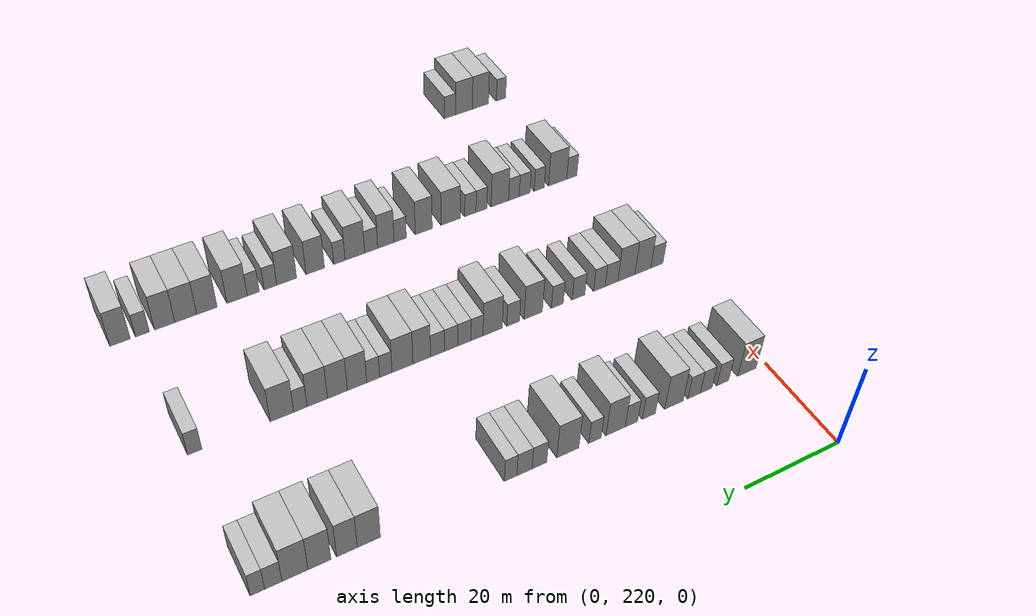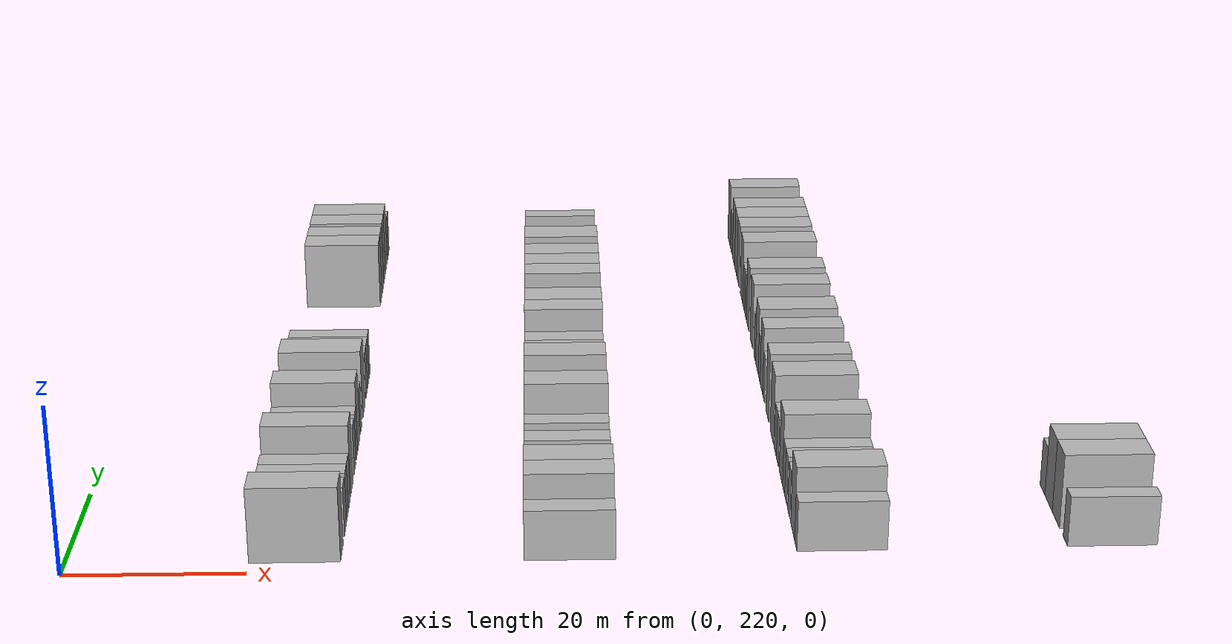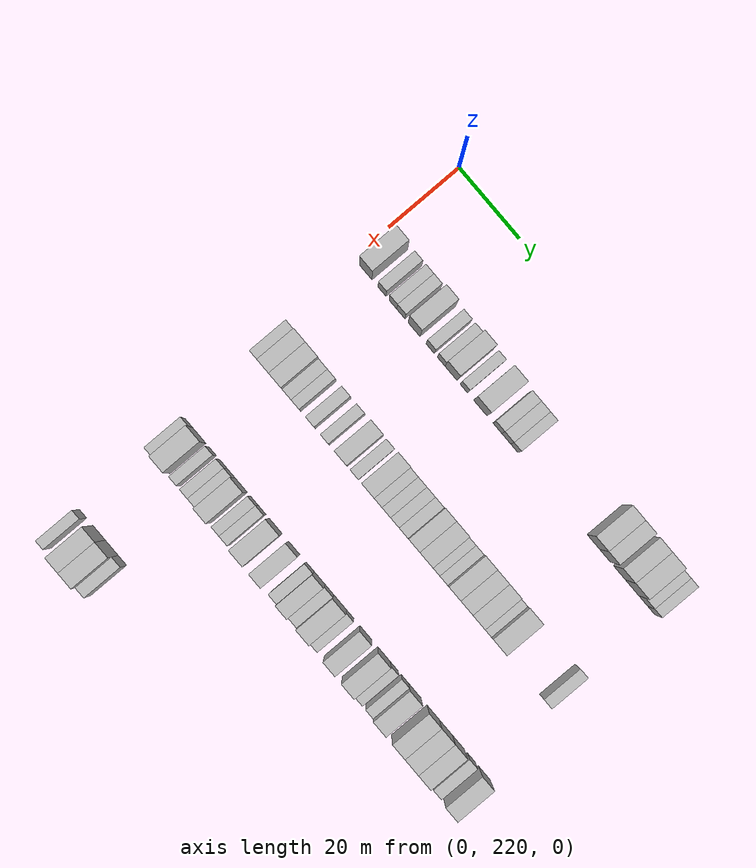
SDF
<sdf version="1.6">
 <world name="default">
  <model name="building_169">
   <static>1</static>
   <pose>25.0000 224.3349 0 0.000000 0.000000 0.000000</pose>
   <link name="link">
    <pose>0 0 4.50 0 0 0</pose>
    <collision name="collision"><geometry><box><size>10.0000 4.1436 9.0000</size></box></geometry></collision>
    <visual name="visual">
     <cast_shadows>0</cast_shadows>
     <geometry><box><size>10.0000 4.1436 9.0000</size></box></geometry>
     <material>
      <script>
       <uri>model://HANNAS_wall/materials/scripts</uri>
       <uri>model://HANNAS_wall/materials/textures</uri>
       <name>vrc/HANNAS_wall</name>
      </script>
     </material>
    </visual>
   </link>
  </model>
  <model name="building_170">
   <static>1</static>
   <pose>25.0000 229.7371 0 0.000000 0.000000 0.000000</pose>
   <link name="link">
    <pose>0 0 3.00 0 0 0</pose>
    <collision name="collision"><geometry><box><size>10.0000 2.6608 6.0000</size></box></geometry></collision>
    <visual name="visual">
     <cast_shadows>0</cast_shadows>
     <geometry><box><size>10.0000 2.6608 6.0000</size></box></geometry>
     <material>
      <script>
       <uri>model://HANNAS_wall/materials/scripts</uri>
       <uri>model://HANNAS_wall/materials/textures</uri>
       <name>vrc/HANNAS_wall</name>
      </script>
     </material>
    </visual>
   </link>
  </model>
  <model name="building_171">
   <static>1</static>
   <pose>25.0000 233.3566 0 0.000000 0.000000 0.000000</pose>
   <link name="link">
    <pose>0 0 3.00 0 0 0</pose>
    <collision name="collision"><geometry><box><size>10.0000 2.5782 6.0000</size></box></geometry></collision>
    <visual name="visual">
     <cast_shadows>0</cast_shadows>
     <geometry><box><size>10.0000 2.5782 6.0000</size></box></geometry>
     <material>
      <script>
       <uri>model://HANNAS_wall/materials/scripts</uri>
       <uri>model://HANNAS_wall/materials/textures</uri>
       <name>vrc/HANNAS_wall</name>
      </script>
     </material>
    </visual>
   </link>
  </model>
  <model name="building_172">
   <static>1</static>
   <pose>25.0000 236.0220 0 0.000000 0.000000 0.000000</pose>
   <link name="link">
    <pose>0 0 3.00 0 0 0</pose>
    <collision name="collision"><geometry><box><size>10.0000 2.7527 6.0000</size></box></geometry></collision>
    <visual name="visual">
     <cast_shadows>0</cast_shadows>
     <geometry><box><size>10.0000 2.7527 6.0000</size></box></geometry>
     <material>
      <script>
       <uri>model://HANNAS_wall/materials/scripts</uri>
       <uri>model://HANNAS_wall/materials/textures</uri>
       <name>vrc/HANNAS_wall</name>
      </script>
     </material>
    </visual>
   </link>
  </model>
  <model name="building_173">
   <static>1</static>
   <pose>25.0000 240.3961 0 0.000000 0.000000 0.000000</pose>
   <link name="link">
    <pose>0 0 4.50 0 0 0</pose>
    <collision name="collision"><geometry><box><size>10.0000 3.9954 9.0000</size></box></geometry></collision>
    <visual name="visual">
     <cast_shadows>0</cast_shadows>
     <geometry><box><size>10.0000 3.9954 9.0000</size></box></geometry>
     <material>
      <script>
       <uri>model://HANNAS_wall/materials/scripts</uri>
       <uri>model://HANNAS_wall/materials/textures</uri>
       <name>vrc/HANNAS_wall</name>
      </script>
     </material>
    </visual>
   </link>
  </model>
  <model name="building_174">
   <static>1</static>
   <pose>25.0000 245.7657 0 0.000000 0.000000 0.000000</pose>
   <link name="link">
    <pose>0 0 3.00 0 0 0</pose>
    <collision name="collision"><geometry><box><size>10.0000 2.7439 6.0000</size></box></geometry></collision>
    <visual name="visual">
     <cast_shadows>0</cast_shadows>
     <geometry><box><size>10.0000 2.7439 6.0000</size></box></geometry>
     <material>
      <script>
       <uri>model://HANNAS_wall/materials/scripts</uri>
       <uri>model://HANNAS_wall/materials/textures</uri>
       <name>vrc/HANNAS_wall</name>
      </script>
     </material>
    </visual>
   </link>
  </model>
  <model name="building_175">
   <static>1</static>
   <pose>25.0000 249.4332 0 0.000000 0.000000 0.000000</pose>
   <link name="link">
    <pose>0 0 3.00 0 0 0</pose>
    <collision name="collision"><geometry><box><size>10.0000 2.5910 6.0000</size></box></geometry></collision>
    <visual name="visual">
     <cast_shadows>0</cast_shadows>
     <geometry><box><size>10.0000 2.5910 6.0000</size></box></geometry>
     <material>
      <script>
       <uri>model://HANNAS_wall/materials/scripts</uri>
       <uri>model://HANNAS_wall/materials/textures</uri>
       <name>vrc/HANNAS_wall</name>
      </script>
     </material>
    </visual>
   </link>
  </model>
  <model name="building_176">
   <static>1</static>
   <pose>25.0000 252.7258 0 0.000000 0.000000 0.000000</pose>
   <link name="link">
    <pose>0 0 4.50 0 0 0</pose>
    <collision name="collision"><geometry><box><size>10.0000 3.9942 9.0000</size></box></geometry></collision>
    <visual name="visual">
     <cast_shadows>0</cast_shadows>
     <geometry><box><size>10.0000 3.9942 9.0000</size></box></geometry>
     <material>
      <script>
       <uri>model://HANNAS_wall/materials/scripts</uri>
       <uri>model://HANNAS_wall/materials/textures</uri>
       <name>vrc/HANNAS_wall</name>
      </script>
     </material>
    </visual>
   </link>
  </model>
  <model name="building_177">
   <static>1</static>
   <pose>25.0000 256.9838 0 0.000000 0.000000 0.000000</pose>
   <link name="link">
    <pose>0 0 3.00 0 0 0</pose>
    <collision name="collision"><geometry><box><size>10.0000 2.5218 6.0000</size></box></geometry></collision>
    <visual name="visual">
     <cast_shadows>0</cast_shadows>
     <geometry><box><size>10.0000 2.5218 6.0000</size></box></geometry>
     <material>
      <script>
       <uri>model://HANNAS_wall/materials/scripts</uri>
       <uri>model://HANNAS_wall/materials/textures</uri>
       <name>vrc/HANNAS_wall</name>
      </script>
     </material>
    </visual>
   </link>
  </model>
  <model name="building_178">
   <static>1</static>
   <pose>25.0000 262.4686 0 0.000000 0.000000 0.000000</pose>
   <link name="link">
    <pose>0 0 4.50 0 0 0</pose>
    <collision name="collision"><geometry><box><size>10.0000 4.4478 9.0000</size></box></geometry></collision>
    <visual name="visual">
     <cast_shadows>0</cast_shadows>
     <geometry><box><size>10.0000 4.4478 9.0000</size></box></geometry>
     <material>
      <script>
       <uri>model://HANNAS_wall/materials/scripts</uri>
       <uri>model://HANNAS_wall/materials/textures</uri>
       <name>vrc/HANNAS_wall</name>
      </script>
     </material>
    </visual>
   </link>
  </model>
  <model name="building_179">
   <static>1</static>
   <pose>25.0000 268.1568 0 0.000000 0.000000 0.000000</pose>
   <link name="link">
    <pose>0 0 3.00 0 0 0</pose>
    <collision name="collision"><geometry><box><size>10.0000 2.9286 6.0000</size></box></geometry></collision>
    <visual name="visual">
     <cast_shadows>0</cast_shadows>
     <geometry><box><size>10.0000 2.9286 6.0000</size></box></geometry>
     <material>
      <script>
       <uri>model://HANNAS_wall/materials/scripts</uri>
       <uri>model://HANNAS_wall/materials/textures</uri>
       <name>vrc/HANNAS_wall</name>
      </script>
     </material>
    </visual>
   </link>
  </model>
  <model name="building_180">
   <static>1</static>
   <pose>25.0000 271.0933 0 0.000000 0.000000 0.000000</pose>
   <link name="link">
    <pose>0 0 3.00 0 0 0</pose>
    <collision name="collision"><geometry><box><size>10.0000 2.9443 6.0000</size></box></geometry></collision>
    <visual name="visual">
     <cast_shadows>0</cast_shadows>
     <geometry><box><size>10.0000 2.9443 6.0000</size></box></geometry>
     <material>
      <script>
       <uri>model://HANNAS_wall/materials/scripts</uri>
       <uri>model://HANNAS_wall/materials/textures</uri>
       <name>vrc/HANNAS_wall</name>
      </script>
     </material>
    </visual>
   </link>
  </model>
  <model name="building_181">
   <static>1</static>
   <pose>25.0000 273.7834 0 0.000000 0.000000 0.000000</pose>
   <link name="link">
    <pose>0 0 3.00 0 0 0</pose>
    <collision name="collision"><geometry><box><size>10.0000 2.4359 6.0000</size></box></geometry></collision>
    <visual name="visual">
     <cast_shadows>0</cast_shadows>
     <geometry><box><size>10.0000 2.4359 6.0000</size></box></geometry>
     <material>
      <script>
       <uri>model://HANNAS_wall/materials/scripts</uri>
       <uri>model://HANNAS_wall/materials/textures</uri>
       <name>vrc/HANNAS_wall</name>
      </script>
     </material>
    </visual>
   </link>
  </model>
  <model name="building_182">
   <static>1</static>
   <pose>25.0000 300.1910 0 0.000000 0.000000 0.000000</pose>
   <link name="link">
    <pose>0 0 4.50 0 0 0</pose>
    <collision name="collision"><geometry><box><size>10.0000 4.1265 9.0000</size></box></geometry></collision>
    <visual name="visual">
     <cast_shadows>0</cast_shadows>
     <geometry><box><size>10.0000 4.1265 9.0000</size></box></geometry>
     <material>
      <script>
       <uri>model://HANNAS_wall/materials/scripts</uri>
       <uri>model://HANNAS_wall/materials/textures</uri>
       <name>vrc/HANNAS_wall</name>
      </script>
     </material>
    </visual>
   </link>
  </model>
  <model name="building_183">
   <static>1</static>
   <pose>25.0000 304.0687 0 0.000000 0.000000 0.000000</pose>
   <link name="link">
    <pose>0 0 4.50 0 0 0</pose>
    <collision name="collision"><geometry><box><size>10.0000 3.6288 9.0000</size></box></geometry></collision>
    <visual name="visual">
     <cast_shadows>0</cast_shadows>
     <geometry><box><size>10.0000 3.6288 9.0000</size></box></geometry>
     <material>
      <script>
       <uri>model://HANNAS_wall/materials/scripts</uri>
       <uri>model://HANNAS_wall/materials/textures</uri>
       <name>vrc/HANNAS_wall</name>
      </script>
     </material>
    </visual>
   </link>
  </model>
  <model name="building_184">
   <static>1</static>
   <pose>25.0000 308.8693 0 0.000000 0.000000 0.000000</pose>
   <link name="link">
    <pose>0 0 4.50 0 0 0</pose>
    <collision name="collision"><geometry><box><size>10.0000 3.9725 9.0000</size></box></geometry></collision>
    <visual name="visual">
     <cast_shadows>0</cast_shadows>
     <geometry><box><size>10.0000 3.9725 9.0000</size></box></geometry>
     <material>
      <script>
       <uri>model://HANNAS_wall/materials/scripts</uri>
       <uri>model://HANNAS_wall/materials/textures</uri>
       <name>vrc/HANNAS_wall</name>
      </script>
     </material>
    </visual>
   </link>
  </model>
  <model name="building_185">
   <static>1</static>
   <pose>25.0000 313.0855 0 0.000000 0.000000 0.000000</pose>
   <link name="link">
    <pose>0 0 4.50 0 0 0</pose>
    <collision name="collision"><geometry><box><size>10.0000 4.4598 9.0000</size></box></geometry></collision>
    <visual name="visual">
     <cast_shadows>0</cast_shadows>
     <geometry><box><size>10.0000 4.4598 9.0000</size></box></geometry>
     <material>
      <script>
       <uri>model://HANNAS_wall/materials/scripts</uri>
       <uri>model://HANNAS_wall/materials/textures</uri>
       <name>vrc/HANNAS_wall</name>
      </script>
     </material>
    </visual>
   </link>
  </model>
  <model name="building_186">
   <static>1</static>
   <pose>25.0000 316.7878 0 0.000000 0.000000 0.000000</pose>
   <link name="link">
    <pose>0 0 3.00 0 0 0</pose>
    <collision name="collision"><geometry><box><size>10.0000 2.9448 6.0000</size></box></geometry></collision>
    <visual name="visual">
     <cast_shadows>0</cast_shadows>
     <geometry><box><size>10.0000 2.9448 6.0000</size></box></geometry>
     <material>
      <script>
       <uri>model://HANNAS_wall/materials/scripts</uri>
       <uri>model://HANNAS_wall/materials/textures</uri>
       <name>vrc/HANNAS_wall</name>
      </script>
     </material>
    </visual>
   </link>
  </model>
  <model name="building_187">
   <static>1</static>
   <pose>25.0000 319.4738 0 0.000000 0.000000 0.000000</pose>
   <link name="link">
    <pose>0 0 3.00 0 0 0</pose>
    <collision name="collision"><geometry><box><size>10.0000 2.4272 6.0000</size></box></geometry></collision>
    <visual name="visual">
     <cast_shadows>0</cast_shadows>
     <geometry><box><size>10.0000 2.4272 6.0000</size></box></geometry>
     <material>
      <script>
       <uri>model://HANNAS_wall/materials/scripts</uri>
       <uri>model://HANNAS_wall/materials/textures</uri>
       <name>vrc/HANNAS_wall</name>
      </script>
     </material>
    </visual>
   </link>
  </model>
  <model name="building_386">
   <static>1</static>
   <pose>55.0000 223.4245 0 0.000000 0.000000 0.000000</pose>
   <link name="link">
    <pose>0 0 3.00 0 0 0</pose>
    <collision name="collision"><geometry><box><size>10.0000 2.8945 6.0000</size></box></geometry></collision>
    <visual name="visual">
     <cast_shadows>0</cast_shadows>
     <geometry><box><size>10.0000 2.8945 6.0000</size></box></geometry>
     <material>
      <script>
       <uri>model://HANNAS_wall/materials/scripts</uri>
       <uri>model://HANNAS_wall/materials/textures</uri>
       <name>vrc/HANNAS_wall</name>
      </script>
     </material>
    </visual>
   </link>
  </model>
  <model name="building_387">
   <static>1</static>
   <pose>55.0000 226.7481 0 0.000000 0.000000 0.000000</pose>
   <link name="link">
    <pose>0 0 4.50 0 0 0</pose>
    <collision name="collision"><geometry><box><size>10.0000 3.7527 9.0000</size></box></geometry></collision>
    <visual name="visual">
     <cast_shadows>0</cast_shadows>
     <geometry><box><size>10.0000 3.7527 9.0000</size></box></geometry>
     <material>
      <script>
       <uri>model://HANNAS_wall/materials/scripts</uri>
       <uri>model://HANNAS_wall/materials/textures</uri>
       <name>vrc/HANNAS_wall</name>
      </script>
     </material>
    </visual>
   </link>
  </model>
  <model name="building_388">
   <static>1</static>
   <pose>55.0000 230.6142 0 0.000000 0.000000 0.000000</pose>
   <link name="link">
    <pose>0 0 4.50 0 0 0</pose>
    <collision name="collision"><geometry><box><size>10.0000 3.9794 9.0000</size></box></geometry></collision>
    <visual name="visual">
     <cast_shadows>0</cast_shadows>
     <geometry><box><size>10.0000 3.9794 9.0000</size></box></geometry>
     <material>
      <script>
       <uri>model://HANNAS_wall/materials/scripts</uri>
       <uri>model://HANNAS_wall/materials/textures</uri>
       <name>vrc/HANNAS_wall</name>
      </script>
     </material>
    </visual>
   </link>
  </model>
  <model name="building_389">
   <static>1</static>
   <pose>55.0000 234.0677 0 0.000000 0.000000 0.000000</pose>
   <link name="link">
    <pose>0 0 3.00 0 0 0</pose>
    <collision name="collision"><geometry><box><size>10.0000 2.9277 6.0000</size></box></geometry></collision>
    <visual name="visual">
     <cast_shadows>0</cast_shadows>
     <geometry><box><size>10.0000 2.9277 6.0000</size></box></geometry>
     <material>
      <script>
       <uri>model://HANNAS_wall/materials/scripts</uri>
       <uri>model://HANNAS_wall/materials/textures</uri>
       <name>vrc/HANNAS_wall</name>
      </script>
     </material>
    </visual>
   </link>
  </model>
  <model name="building_390">
   <static>1</static>
   <pose>55.0000 236.8466 0 0.000000 0.000000 0.000000</pose>
   <link name="link">
    <pose>0 0 3.00 0 0 0</pose>
    <collision name="collision"><geometry><box><size>10.0000 2.6301 6.0000</size></box></geometry></collision>
    <visual name="visual">
     <cast_shadows>0</cast_shadows>
     <geometry><box><size>10.0000 2.6301 6.0000</size></box></geometry>
     <material>
      <script>
       <uri>model://HANNAS_wall/materials/scripts</uri>
       <uri>model://HANNAS_wall/materials/textures</uri>
       <name>vrc/HANNAS_wall</name>
      </script>
     </material>
    </visual>
   </link>
  </model>
  <model name="building_391">
   <static>1</static>
   <pose>55.0000 241.5915 0 0.000000 0.000000 0.000000</pose>
   <link name="link">
    <pose>0 0 3.00 0 0 0</pose>
    <collision name="collision"><geometry><box><size>10.0000 2.8597 6.0000</size></box></geometry></collision>
    <visual name="visual">
     <cast_shadows>0</cast_shadows>
     <geometry><box><size>10.0000 2.8597 6.0000</size></box></geometry>
     <material>
      <script>
       <uri>model://HANNAS_wall/materials/scripts</uri>
       <uri>model://HANNAS_wall/materials/textures</uri>
       <name>vrc/HANNAS_wall</name>
      </script>
     </material>
    </visual>
   </link>
  </model>
  <model name="building_392">
   <static>1</static>
   <pose>55.0000 246.3440 0 0.000000 0.000000 0.000000</pose>
   <link name="link">
    <pose>0 0 3.00 0 0 0</pose>
    <collision name="collision"><geometry><box><size>10.0000 2.6451 6.0000</size></box></geometry></collision>
    <visual name="visual">
     <cast_shadows>0</cast_shadows>
     <geometry><box><size>10.0000 2.6451 6.0000</size></box></geometry>
     <material>
      <script>
       <uri>model://HANNAS_wall/materials/scripts</uri>
       <uri>model://HANNAS_wall/materials/textures</uri>
       <name>vrc/HANNAS_wall</name>
      </script>
     </material>
    </visual>
   </link>
  </model>
  <model name="building_393">
   <static>1</static>
   <pose>55.0000 251.6758 0 0.000000 0.000000 0.000000</pose>
   <link name="link">
    <pose>0 0 4.50 0 0 0</pose>
    <collision name="collision"><geometry><box><size>10.0000 4.0184 9.0000</size></box></geometry></collision>
    <visual name="visual">
     <cast_shadows>0</cast_shadows>
     <geometry><box><size>10.0000 4.0184 9.0000</size></box></geometry>
     <material>
      <script>
       <uri>model://HANNAS_wall/materials/scripts</uri>
       <uri>model://HANNAS_wall/materials/textures</uri>
       <name>vrc/HANNAS_wall</name>
      </script>
     </material>
    </visual>
   </link>
  </model>
  <model name="building_394">
   <static>1</static>
   <pose>55.0000 256.0623 0 0.000000 0.000000 0.000000</pose>
   <link name="link">
    <pose>0 0 3.00 0 0 0</pose>
    <collision name="collision"><geometry><box><size>10.0000 2.7546 6.0000</size></box></geometry></collision>
    <visual name="visual">
     <cast_shadows>0</cast_shadows>
     <geometry><box><size>10.0000 2.7546 6.0000</size></box></geometry>
     <material>
      <script>
       <uri>model://HANNAS_wall/materials/scripts</uri>
       <uri>model://HANNAS_wall/materials/textures</uri>
       <name>vrc/HANNAS_wall</name>
      </script>
     </material>
    </visual>
   </link>
  </model>
  <model name="building_395">
   <static>1</static>
   <pose>55.0000 260.4846 0 0.000000 0.000000 0.000000</pose>
   <link name="link">
    <pose>0 0 4.50 0 0 0</pose>
    <collision name="collision"><geometry><box><size>10.0000 4.0901 9.0000</size></box></geometry></collision>
    <visual name="visual">
     <cast_shadows>0</cast_shadows>
     <geometry><box><size>10.0000 4.0901 9.0000</size></box></geometry>
     <material>
      <script>
       <uri>model://HANNAS_wall/materials/scripts</uri>
       <uri>model://HANNAS_wall/materials/textures</uri>
       <name>vrc/HANNAS_wall</name>
      </script>
     </material>
    </visual>
   </link>
  </model>
  <model name="building_396">
   <static>1</static>
   <pose>55.0000 263.8168 0 0.000000 0.000000 0.000000</pose>
   <link name="link">
    <pose>0 0 3.00 0 0 0</pose>
    <collision name="collision"><geometry><box><size>10.0000 2.5742 6.0000</size></box></geometry></collision>
    <visual name="visual">
     <cast_shadows>0</cast_shadows>
     <geometry><box><size>10.0000 2.5742 6.0000</size></box></geometry>
     <material>
      <script>
       <uri>model://HANNAS_wall/materials/scripts</uri>
       <uri>model://HANNAS_wall/materials/textures</uri>
       <name>vrc/HANNAS_wall</name>
      </script>
     </material>
    </visual>
   </link>
  </model>
  <model name="building_397">
   <static>1</static>
   <pose>55.0000 266.5004 0 0.000000 0.000000 0.000000</pose>
   <link name="link">
    <pose>0 0 3.00 0 0 0</pose>
    <collision name="collision"><geometry><box><size>10.0000 2.7930 6.0000</size></box></geometry></collision>
    <visual name="visual">
     <cast_shadows>0</cast_shadows>
     <geometry><box><size>10.0000 2.7930 6.0000</size></box></geometry>
     <material>
      <script>
       <uri>model://HANNAS_wall/materials/scripts</uri>
       <uri>model://HANNAS_wall/materials/textures</uri>
       <name>vrc/HANNAS_wall</name>
      </script>
     </material>
    </visual>
   </link>
  </model>
  <model name="building_398">
   <static>1</static>
   <pose>55.0000 269.2854 0 0.000000 0.000000 0.000000</pose>
   <link name="link">
    <pose>0 0 3.00 0 0 0</pose>
    <collision name="collision"><geometry><box><size>10.0000 2.7769 6.0000</size></box></geometry></collision>
    <visual name="visual">
     <cast_shadows>0</cast_shadows>
     <geometry><box><size>10.0000 2.7769 6.0000</size></box></geometry>
     <material>
      <script>
       <uri>model://HANNAS_wall/materials/scripts</uri>
       <uri>model://HANNAS_wall/materials/textures</uri>
       <name>vrc/HANNAS_wall</name>
      </script>
     </material>
    </visual>
   </link>
  </model>
  <model name="building_399">
   <static>1</static>
   <pose>55.0000 272.1260 0 0.000000 0.000000 0.000000</pose>
   <link name="link">
    <pose>0 0 3.00 0 0 0</pose>
    <collision name="collision"><geometry><box><size>10.0000 2.9043 6.0000</size></box></geometry></collision>
    <visual name="visual">
     <cast_shadows>0</cast_shadows>
     <geometry><box><size>10.0000 2.9043 6.0000</size></box></geometry>
     <material>
      <script>
       <uri>model://HANNAS_wall/materials/scripts</uri>
       <uri>model://HANNAS_wall/materials/textures</uri>
       <name>vrc/HANNAS_wall</name>
      </script>
     </material>
    </visual>
   </link>
  </model>
  <model name="building_400">
   <static>1</static>
   <pose>55.0000 275.3796 0 0.000000 0.000000 0.000000</pose>
   <link name="link">
    <pose>0 0 4.50 0 0 0</pose>
    <collision name="collision"><geometry><box><size>10.0000 3.6030 9.0000</size></box></geometry></collision>
    <visual name="visual">
     <cast_shadows>0</cast_shadows>
     <geometry><box><size>10.0000 3.6030 9.0000</size></box></geometry>
     <material>
      <script>
       <uri>model://HANNAS_wall/materials/scripts</uri>
       <uri>model://HANNAS_wall/materials/textures</uri>
       <name>vrc/HANNAS_wall</name>
      </script>
     </material>
    </visual>
   </link>
  </model>
  <model name="building_401">
   <static>1</static>
   <pose>55.0000 279.3022 0 0.000000 0.000000 0.000000</pose>
   <link name="link">
    <pose>0 0 4.50 0 0 0</pose>
    <collision name="collision"><geometry><box><size>10.0000 4.2421 9.0000</size></box></geometry></collision>
    <visual name="visual">
     <cast_shadows>0</cast_shadows>
     <geometry><box><size>10.0000 4.2421 9.0000</size></box></geometry>
     <material>
      <script>
       <uri>model://HANNAS_wall/materials/scripts</uri>
       <uri>model://HANNAS_wall/materials/textures</uri>
       <name>vrc/HANNAS_wall</name>
      </script>
     </material>
    </visual>
   </link>
  </model>
  <model name="building_402">
   <static>1</static>
   <pose>55.0000 282.6652 0 0.000000 0.000000 0.000000</pose>
   <link name="link">
    <pose>0 0 3.00 0 0 0</pose>
    <collision name="collision"><geometry><box><size>10.0000 2.4840 6.0000</size></box></geometry></collision>
    <visual name="visual">
     <cast_shadows>0</cast_shadows>
     <geometry><box><size>10.0000 2.4840 6.0000</size></box></geometry>
     <material>
      <script>
       <uri>model://HANNAS_wall/materials/scripts</uri>
       <uri>model://HANNAS_wall/materials/textures</uri>
       <name>vrc/HANNAS_wall</name>
      </script>
     </material>
    </visual>
   </link>
  </model>
  <model name="building_403">
   <static>1</static>
   <pose>55.0000 285.1996 0 0.000000 0.000000 0.000000</pose>
   <link name="link">
    <pose>0 0 3.00 0 0 0</pose>
    <collision name="collision"><geometry><box><size>10.0000 2.5849 6.0000</size></box></geometry></collision>
    <visual name="visual">
     <cast_shadows>0</cast_shadows>
     <geometry><box><size>10.0000 2.5849 6.0000</size></box></geometry>
     <material>
      <script>
       <uri>model://HANNAS_wall/materials/scripts</uri>
       <uri>model://HANNAS_wall/materials/textures</uri>
       <name>vrc/HANNAS_wall</name>
      </script>
     </material>
    </visual>
   </link>
  </model>
  <model name="building_404">
   <static>1</static>
   <pose>55.0000 288.4129 0 0.000000 0.000000 0.000000</pose>
   <link name="link">
    <pose>0 0 4.50 0 0 0</pose>
    <collision name="collision"><geometry><box><size>10.0000 3.8416 9.0000</size></box></geometry></collision>
    <visual name="visual">
     <cast_shadows>0</cast_shadows>
     <geometry><box><size>10.0000 3.8416 9.0000</size></box></geometry>
     <material>
      <script>
       <uri>model://HANNAS_wall/materials/scripts</uri>
       <uri>model://HANNAS_wall/materials/textures</uri>
       <name>vrc/HANNAS_wall</name>
      </script>
     </material>
    </visual>
   </link>
  </model>
  <model name="building_405">
   <static>1</static>
   <pose>55.0000 292.2715 0 0.000000 0.000000 0.000000</pose>
   <link name="link">
    <pose>0 0 4.50 0 0 0</pose>
    <collision name="collision"><geometry><box><size>10.0000 3.8756 9.0000</size></box></geometry></collision>
    <visual name="visual">
     <cast_shadows>0</cast_shadows>
     <geometry><box><size>10.0000 3.8756 9.0000</size></box></geometry>
     <material>
      <script>
       <uri>model://HANNAS_wall/materials/scripts</uri>
       <uri>model://HANNAS_wall/materials/textures</uri>
       <name>vrc/HANNAS_wall</name>
      </script>
     </material>
    </visual>
   </link>
  </model>
  <model name="building_406">
   <static>1</static>
   <pose>55.0000 296.1793 0 0.000000 0.000000 0.000000</pose>
   <link name="link">
    <pose>0 0 4.50 0 0 0</pose>
    <collision name="collision"><geometry><box><size>10.0000 3.9400 9.0000</size></box></geometry></collision>
    <visual name="visual">
     <cast_shadows>0</cast_shadows>
     <geometry><box><size>10.0000 3.9400 9.0000</size></box></geometry>
     <material>
      <script>
       <uri>model://HANNAS_wall/materials/scripts</uri>
       <uri>model://HANNAS_wall/materials/textures</uri>
       <name>vrc/HANNAS_wall</name>
      </script>
     </material>
    </visual>
   </link>
  </model>
  <model name="building_407">
   <static>1</static>
   <pose>55.0000 299.4240 0 0.000000 0.000000 0.000000</pose>
   <link name="link">
    <pose>0 0 3.00 0 0 0</pose>
    <collision name="collision"><geometry><box><size>10.0000 2.5493 6.0000</size></box></geometry></collision>
    <visual name="visual">
     <cast_shadows>0</cast_shadows>
     <geometry><box><size>10.0000 2.5493 6.0000</size></box></geometry>
     <material>
      <script>
       <uri>model://HANNAS_wall/materials/scripts</uri>
       <uri>model://HANNAS_wall/materials/textures</uri>
       <name>vrc/HANNAS_wall</name>
      </script>
     </material>
    </visual>
   </link>
  </model>
  <model name="building_408">
   <static>1</static>
   <pose>55.0000 302.9308 0 0.000000 0.000000 0.000000</pose>
   <link name="link">
    <pose>0 0 4.50 0 0 0</pose>
    <collision name="collision"><geometry><box><size>10.0000 4.4643 9.0000</size></box></geometry></collision>
    <visual name="visual">
     <cast_shadows>0</cast_shadows>
     <geometry><box><size>10.0000 4.4643 9.0000</size></box></geometry>
     <material>
      <script>
       <uri>model://HANNAS_wall/materials/scripts</uri>
       <uri>model://HANNAS_wall/materials/textures</uri>
       <name>vrc/HANNAS_wall</name>
      </script>
     </material>
    </visual>
   </link>
  </model>
  <model name="building_409">
   <static>1</static>
   <pose>55.0000 319.0730 0 0.000000 0.000000 0.000000</pose>
   <link name="link">
    <pose>0 0 3.00 0 0 0</pose>
    <collision name="collision"><geometry><box><size>10.0000 2.6067 6.0000</size></box></geometry></collision>
    <visual name="visual">
     <cast_shadows>0</cast_shadows>
     <geometry><box><size>10.0000 2.6067 6.0000</size></box></geometry>
     <material>
      <script>
       <uri>model://HANNAS_wall/materials/scripts</uri>
       <uri>model://HANNAS_wall/materials/textures</uri>
       <name>vrc/HANNAS_wall</name>
      </script>
     </material>
    </visual>
   </link>
  </model>
  <model name="building_616">
   <static>1</static>
   <pose>85.0000 224.5182 0 0.000000 0.000000 0.000000</pose>
   <link name="link">
    <pose>0 0 3.00 0 0 0</pose>
    <collision name="collision"><geometry><box><size>10.0000 2.5204 6.0000</size></box></geometry></collision>
    <visual name="visual">
     <cast_shadows>0</cast_shadows>
     <geometry><box><size>10.0000 2.5204 6.0000</size></box></geometry>
     <material>
      <script>
       <uri>model://HANNAS_wall/materials/scripts</uri>
       <uri>model://HANNAS_wall/materials/textures</uri>
       <name>vrc/HANNAS_wall</name>
      </script>
     </material>
    </visual>
   </link>
  </model>
  <model name="building_617">
   <static>1</static>
   <pose>85.0000 228.0210 0 0.000000 0.000000 0.000000</pose>
   <link name="link">
    <pose>0 0 4.50 0 0 0</pose>
    <collision name="collision"><geometry><box><size>10.0000 4.4853 9.0000</size></box></geometry></collision>
    <visual name="visual">
     <cast_shadows>0</cast_shadows>
     <geometry><box><size>10.0000 4.4853 9.0000</size></box></geometry>
     <material>
      <script>
       <uri>model://HANNAS_wall/materials/scripts</uri>
       <uri>model://HANNAS_wall/materials/textures</uri>
       <name>vrc/HANNAS_wall</name>
      </script>
     </material>
    </visual>
   </link>
  </model>
  <model name="building_618">
   <static>1</static>
   <pose>85.0000 232.5140 0 0.000000 0.000000 0.000000</pose>
   <link name="link">
    <pose>0 0 3.00 0 0 0</pose>
    <collision name="collision"><geometry><box><size>10.0000 2.5006 6.0000</size></box></geometry></collision>
    <visual name="visual">
     <cast_shadows>0</cast_shadows>
     <geometry><box><size>10.0000 2.5006 6.0000</size></box></geometry>
     <material>
      <script>
       <uri>model://HANNAS_wall/materials/scripts</uri>
       <uri>model://HANNAS_wall/materials/textures</uri>
       <name>vrc/HANNAS_wall</name>
      </script>
     </material>
    </visual>
   </link>
  </model>
  <model name="building_619">
   <static>1</static>
   <pose>85.0000 236.0574 0 0.000000 0.000000 0.000000</pose>
   <link name="link">
    <pose>0 0 3.00 0 0 0</pose>
    <collision name="collision"><geometry><box><size>10.0000 2.5862 6.0000</size></box></geometry></collision>
    <visual name="visual">
     <cast_shadows>0</cast_shadows>
     <geometry><box><size>10.0000 2.5862 6.0000</size></box></geometry>
     <material>
      <script>
       <uri>model://HANNAS_wall/materials/scripts</uri>
       <uri>model://HANNAS_wall/materials/textures</uri>
       <name>vrc/HANNAS_wall</name>
      </script>
     </material>
    </visual>
   </link>
  </model>
  <model name="building_620">
   <static>1</static>
   <pose>85.0000 238.6362 0 0.000000 0.000000 0.000000</pose>
   <link name="link">
    <pose>0 0 3.00 0 0 0</pose>
    <collision name="collision"><geometry><box><size>10.0000 2.5714 6.0000</size></box></geometry></collision>
    <visual name="visual">
     <cast_shadows>0</cast_shadows>
     <geometry><box><size>10.0000 2.5714 6.0000</size></box></geometry>
     <material>
      <script>
       <uri>model://HANNAS_wall/materials/scripts</uri>
       <uri>model://HANNAS_wall/materials/textures</uri>
       <name>vrc/HANNAS_wall</name>
      </script>
     </material>
    </visual>
   </link>
  </model>
  <model name="building_621">
   <static>1</static>
   <pose>85.0000 241.9941 0 0.000000 0.000000 0.000000</pose>
   <link name="link">
    <pose>0 0 4.50 0 0 0</pose>
    <collision name="collision"><geometry><box><size>10.0000 4.1444 9.0000</size></box></geometry></collision>
    <visual name="visual">
     <cast_shadows>0</cast_shadows>
     <geometry><box><size>10.0000 4.1444 9.0000</size></box></geometry>
     <material>
      <script>
       <uri>model://HANNAS_wall/materials/scripts</uri>
       <uri>model://HANNAS_wall/materials/textures</uri>
       <name>vrc/HANNAS_wall</name>
      </script>
     </material>
    </visual>
   </link>
  </model>
  <model name="building_622">
   <static>1</static>
   <pose>85.0000 246.3533 0 0.000000 0.000000 0.000000</pose>
   <link name="link">
    <pose>0 0 3.00 0 0 0</pose>
    <collision name="collision"><geometry><box><size>10.0000 2.5740 6.0000</size></box></geometry></collision>
    <visual name="visual">
     <cast_shadows>0</cast_shadows>
     <geometry><box><size>10.0000 2.5740 6.0000</size></box></geometry>
     <material>
      <script>
       <uri>model://HANNAS_wall/materials/scripts</uri>
       <uri>model://HANNAS_wall/materials/textures</uri>
       <name>vrc/HANNAS_wall</name>
      </script>
     </material>
    </visual>
   </link>
  </model>
  <model name="building_623">
   <static>1</static>
   <pose>85.0000 248.9669 0 0.000000 0.000000 0.000000</pose>
   <link name="link">
    <pose>0 0 3.00 0 0 0</pose>
    <collision name="collision"><geometry><box><size>10.0000 2.6533 6.0000</size></box></geometry></collision>
    <visual name="visual">
     <cast_shadows>0</cast_shadows>
     <geometry><box><size>10.0000 2.6533 6.0000</size></box></geometry>
     <material>
      <script>
       <uri>model://HANNAS_wall/materials/scripts</uri>
       <uri>model://HANNAS_wall/materials/textures</uri>
       <name>vrc/HANNAS_wall</name>
      </script>
     </material>
    </visual>
   </link>
  </model>
  <model name="building_624">
   <static>1</static>
   <pose>85.0000 253.5222 0 0.000000 0.000000 0.000000</pose>
   <link name="link">
    <pose>0 0 4.50 0 0 0</pose>
    <collision name="collision"><geometry><box><size>10.0000 4.4573 9.0000</size></box></geometry></collision>
    <visual name="visual">
     <cast_shadows>0</cast_shadows>
     <geometry><box><size>10.0000 4.4573 9.0000</size></box></geometry>
     <material>
      <script>
       <uri>model://HANNAS_wall/materials/scripts</uri>
       <uri>model://HANNAS_wall/materials/textures</uri>
       <name>vrc/HANNAS_wall</name>
      </script>
     </material>
    </visual>
   </link>
  </model>
  <model name="building_625">
   <static>1</static>
   <pose>85.0000 259.6813 0 0.000000 0.000000 0.000000</pose>
   <link name="link">
    <pose>0 0 4.50 0 0 0</pose>
    <collision name="collision"><geometry><box><size>10.0000 3.8610 9.0000</size></box></geometry></collision>
    <visual name="visual">
     <cast_shadows>0</cast_shadows>
     <geometry><box><size>10.0000 3.8610 9.0000</size></box></geometry>
     <material>
      <script>
       <uri>model://HANNAS_wall/materials/scripts</uri>
       <uri>model://HANNAS_wall/materials/textures</uri>
       <name>vrc/HANNAS_wall</name>
      </script>
     </material>
    </visual>
   </link>
  </model>
  <model name="building_626">
   <static>1</static>
   <pose>85.0000 264.9758 0 0.000000 0.000000 0.000000</pose>
   <link name="link">
    <pose>0 0 3.00 0 0 0</pose>
    <collision name="collision"><geometry><box><size>10.0000 2.7280 6.0000</size></box></geometry></collision>
    <visual name="visual">
     <cast_shadows>0</cast_shadows>
     <geometry><box><size>10.0000 2.7280 6.0000</size></box></geometry>
     <material>
      <script>
       <uri>model://HANNAS_wall/materials/scripts</uri>
       <uri>model://HANNAS_wall/materials/textures</uri>
       <name>vrc/HANNAS_wall</name>
      </script>
     </material>
    </visual>
   </link>
  </model>
  <model name="building_627">
   <static>1</static>
   <pose>85.0000 268.1659 0 0.000000 0.000000 0.000000</pose>
   <link name="link">
    <pose>0 0 4.50 0 0 0</pose>
    <collision name="collision"><geometry><box><size>10.0000 3.6523 9.0000</size></box></geometry></collision>
    <visual name="visual">
     <cast_shadows>0</cast_shadows>
     <geometry><box><size>10.0000 3.6523 9.0000</size></box></geometry>
     <material>
      <script>
       <uri>model://HANNAS_wall/materials/scripts</uri>
       <uri>model://HANNAS_wall/materials/textures</uri>
       <name>vrc/HANNAS_wall</name>
      </script>
     </material>
    </visual>
   </link>
  </model>
  <model name="building_628">
   <static>1</static>
   <pose>85.0000 271.4224 0 0.000000 0.000000 0.000000</pose>
   <link name="link">
    <pose>0 0 3.00 0 0 0</pose>
    <collision name="collision"><geometry><box><size>10.0000 2.8606 6.0000</size></box></geometry></collision>
    <visual name="visual">
     <cast_shadows>0</cast_shadows>
     <geometry><box><size>10.0000 2.8606 6.0000</size></box></geometry>
     <material>
      <script>
       <uri>model://HANNAS_wall/materials/scripts</uri>
       <uri>model://HANNAS_wall/materials/textures</uri>
       <name>vrc/HANNAS_wall</name>
      </script>
     </material>
    </visual>
   </link>
  </model>
  <model name="building_629">
   <static>1</static>
   <pose>85.0000 274.9969 0 0.000000 0.000000 0.000000</pose>
   <link name="link">
    <pose>0 0 4.50 0 0 0</pose>
    <collision name="collision"><geometry><box><size>10.0000 4.2883 9.0000</size></box></geometry></collision>
    <visual name="visual">
     <cast_shadows>0</cast_shadows>
     <geometry><box><size>10.0000 4.2883 9.0000</size></box></geometry>
     <material>
      <script>
       <uri>model://HANNAS_wall/materials/scripts</uri>
       <uri>model://HANNAS_wall/materials/textures</uri>
       <name>vrc/HANNAS_wall</name>
      </script>
     </material>
    </visual>
   </link>
  </model>
  <model name="building_630">
   <static>1</static>
   <pose>85.0000 278.3583 0 0.000000 0.000000 0.000000</pose>
   <link name="link">
    <pose>0 0 3.00 0 0 0</pose>
    <collision name="collision"><geometry><box><size>10.0000 2.4344 6.0000</size></box></geometry></collision>
    <visual name="visual">
     <cast_shadows>0</cast_shadows>
     <geometry><box><size>10.0000 2.4344 6.0000</size></box></geometry>
     <material>
      <script>
       <uri>model://HANNAS_wall/materials/scripts</uri>
       <uri>model://HANNAS_wall/materials/textures</uri>
       <name>vrc/HANNAS_wall</name>
      </script>
     </material>
    </visual>
   </link>
  </model>
  <model name="building_631">
   <static>1</static>
   <pose>85.0000 283.5409 0 0.000000 0.000000 0.000000</pose>
   <link name="link">
    <pose>0 0 4.50 0 0 0</pose>
    <collision name="collision"><geometry><box><size>10.0000 3.9309 9.0000</size></box></geometry></collision>
    <visual name="visual">
     <cast_shadows>0</cast_shadows>
     <geometry><box><size>10.0000 3.9309 9.0000</size></box></geometry>
     <material>
      <script>
       <uri>model://HANNAS_wall/materials/scripts</uri>
       <uri>model://HANNAS_wall/materials/textures</uri>
       <name>vrc/HANNAS_wall</name>
      </script>
     </material>
    </visual>
   </link>
  </model>
  <model name="building_632">
   <static>1</static>
   <pose>85.0000 289.5874 0 0.000000 0.000000 0.000000</pose>
   <link name="link">
    <pose>0 0 4.50 0 0 0</pose>
    <collision name="collision"><geometry><box><size>10.0000 4.1621 9.0000</size></box></geometry></collision>
    <visual name="visual">
     <cast_shadows>0</cast_shadows>
     <geometry><box><size>10.0000 4.1621 9.0000</size></box></geometry>
     <material>
      <script>
       <uri>model://HANNAS_wall/materials/scripts</uri>
       <uri>model://HANNAS_wall/materials/textures</uri>
       <name>vrc/HANNAS_wall</name>
      </script>
     </material>
    </visual>
   </link>
  </model>
  <model name="building_633">
   <static>1</static>
   <pose>85.0000 292.9793 0 0.000000 0.000000 0.000000</pose>
   <link name="link">
    <pose>0 0 3.00 0 0 0</pose>
    <collision name="collision"><geometry><box><size>10.0000 2.6217 6.0000</size></box></geometry></collision>
    <visual name="visual">
     <cast_shadows>0</cast_shadows>
     <geometry><box><size>10.0000 2.6217 6.0000</size></box></geometry>
     <material>
      <script>
       <uri>model://HANNAS_wall/materials/scripts</uri>
       <uri>model://HANNAS_wall/materials/textures</uri>
       <name>vrc/HANNAS_wall</name>
      </script>
     </material>
    </visual>
   </link>
  </model>
  <model name="building_634">
   <static>1</static>
   <pose>85.0000 296.5255 0 0.000000 0.000000 0.000000</pose>
   <link name="link">
    <pose>0 0 3.00 0 0 0</pose>
    <collision name="collision"><geometry><box><size>10.0000 2.4705 6.0000</size></box></geometry></collision>
    <visual name="visual">
     <cast_shadows>0</cast_shadows>
     <geometry><box><size>10.0000 2.4705 6.0000</size></box></geometry>
     <material>
      <script>
       <uri>model://HANNAS_wall/materials/scripts</uri>
       <uri>model://HANNAS_wall/materials/textures</uri>
       <name>vrc/HANNAS_wall</name>
      </script>
     </material>
    </visual>
   </link>
  </model>
  <model name="building_635">
   <static>1</static>
   <pose>85.0000 299.8324 0 0.000000 0.000000 0.000000</pose>
   <link name="link">
    <pose>0 0 4.50 0 0 0</pose>
    <collision name="collision"><geometry><box><size>10.0000 4.1433 9.0000</size></box></geometry></collision>
    <visual name="visual">
     <cast_shadows>0</cast_shadows>
     <geometry><box><size>10.0000 4.1433 9.0000</size></box></geometry>
     <material>
      <script>
       <uri>model://HANNAS_wall/materials/scripts</uri>
       <uri>model://HANNAS_wall/materials/textures</uri>
       <name>vrc/HANNAS_wall</name>
      </script>
     </material>
    </visual>
   </link>
  </model>
  <model name="building_636">
   <static>1</static>
   <pose>85.0000 305.9421 0 0.000000 0.000000 0.000000</pose>
   <link name="link">
    <pose>0 0 4.50 0 0 0</pose>
    <collision name="collision"><geometry><box><size>10.0000 4.0762 9.0000</size></box></geometry></collision>
    <visual name="visual">
     <cast_shadows>0</cast_shadows>
     <geometry><box><size>10.0000 4.0762 9.0000</size></box></geometry>
     <material>
      <script>
       <uri>model://HANNAS_wall/materials/scripts</uri>
       <uri>model://HANNAS_wall/materials/textures</uri>
       <name>vrc/HANNAS_wall</name>
      </script>
     </material>
    </visual>
   </link>
  </model>
  <model name="building_637">
   <static>1</static>
   <pose>85.0000 310.1444 0 0.000000 0.000000 0.000000</pose>
   <link name="link">
    <pose>0 0 4.50 0 0 0</pose>
    <collision name="collision"><geometry><box><size>10.0000 4.3283 9.0000</size></box></geometry></collision>
    <visual name="visual">
     <cast_shadows>0</cast_shadows>
     <geometry><box><size>10.0000 4.3283 9.0000</size></box></geometry>
     <material>
      <script>
       <uri>model://HANNAS_wall/materials/scripts</uri>
       <uri>model://HANNAS_wall/materials/textures</uri>
       <name>vrc/HANNAS_wall</name>
      </script>
     </material>
    </visual>
   </link>
  </model>
  <model name="building_638">
   <static>1</static>
   <pose>85.0000 314.3055 0 0.000000 0.000000 0.000000</pose>
   <link name="link">
    <pose>0 0 4.50 0 0 0</pose>
    <collision name="collision"><geometry><box><size>10.0000 3.9939 9.0000</size></box></geometry></collision>
    <visual name="visual">
     <cast_shadows>0</cast_shadows>
     <geometry><box><size>10.0000 3.9939 9.0000</size></box></geometry>
     <material>
      <script>
       <uri>model://HANNAS_wall/materials/scripts</uri>
       <uri>model://HANNAS_wall/materials/textures</uri>
       <name>vrc/HANNAS_wall</name>
      </script>
     </material>
    </visual>
   </link>
  </model>
  <model name="building_639">
   <static>1</static>
   <pose>85.0000 318.6486 0 0.000000 0.000000 0.000000</pose>
   <link name="link">
    <pose>0 0 3.00 0 0 0</pose>
    <collision name="collision"><geometry><box><size>10.0000 2.6924 6.0000</size></box></geometry></collision>
    <visual name="visual">
     <cast_shadows>0</cast_shadows>
     <geometry><box><size>10.0000 2.6924 6.0000</size></box></geometry>
     <material>
      <script>
       <uri>model://HANNAS_wall/materials/scripts</uri>
       <uri>model://HANNAS_wall/materials/textures</uri>
       <name>vrc/HANNAS_wall</name>
      </script>
     </material>
    </visual>
   </link>
  </model>
  <model name="building_640">
   <static>1</static>
   <pose>85.0000 322.9521 0 0.000000 0.000000 0.000000</pose>
   <link name="link">
    <pose>0 0 4.50 0 0 0</pose>
    <collision name="collision"><geometry><box><size>10.0000 3.9148 9.0000</size></box></geometry></collision>
    <visual name="visual">
     <cast_shadows>0</cast_shadows>
     <geometry><box><size>10.0000 3.9148 9.0000</size></box></geometry>
     <material>
      <script>
       <uri>model://HANNAS_wall/materials/scripts</uri>
       <uri>model://HANNAS_wall/materials/textures</uri>
       <name>vrc/HANNAS_wall</name>
      </script>
     </material>
    </visual>
   </link>
  </model>
  <model name="building_832">
   <static>1</static>
   <pose>115.0000 224.7675 0 0.000000 0.000000 0.000000</pose>
   <link name="link">
    <pose>0 0 3.00 0 0 0</pose>
    <collision name="collision"><geometry><box><size>10.0000 2.4264 6.0000</size></box></geometry></collision>
    <visual name="visual">
     <cast_shadows>0</cast_shadows>
     <geometry><box><size>10.0000 2.4264 6.0000</size></box></geometry>
     <material>
      <script>
       <uri>model://HANNAS_wall/materials/scripts</uri>
       <uri>model://HANNAS_wall/materials/textures</uri>
       <name>vrc/HANNAS_wall</name>
      </script>
     </material>
    </visual>
   </link>
  </model>
  <model name="building_833">
   <static>1</static>
   <pose>115.0000 230.0669 0 0.000000 0.000000 0.000000</pose>
   <link name="link">
    <pose>0 0 4.50 0 0 0</pose>
    <collision name="collision"><geometry><box><size>10.0000 4.1725 9.0000</size></box></geometry></collision>
    <visual name="visual">
     <cast_shadows>0</cast_shadows>
     <geometry><box><size>10.0000 4.1725 9.0000</size></box></geometry>
     <material>
      <script>
       <uri>model://HANNAS_wall/materials/scripts</uri>
       <uri>model://HANNAS_wall/materials/textures</uri>
       <name>vrc/HANNAS_wall</name>
      </script>
     </material>
    </visual>
   </link>
  </model>
  <model name="building_834">
   <static>1</static>
   <pose>115.0000 234.2880 0 0.000000 0.000000 0.000000</pose>
   <link name="link">
    <pose>0 0 4.50 0 0 0</pose>
    <collision name="collision"><geometry><box><size>10.0000 4.2698 9.0000</size></box></geometry></collision>
    <visual name="visual">
     <cast_shadows>0</cast_shadows>
     <geometry><box><size>10.0000 4.2698 9.0000</size></box></geometry>
     <material>
      <script>
       <uri>model://HANNAS_wall/materials/scripts</uri>
       <uri>model://HANNAS_wall/materials/textures</uri>
       <name>vrc/HANNAS_wall</name>
      </script>
     </material>
    </visual>
   </link>
  </model>
  <model name="building_835">
   <static>1</static>
   <pose>115.0000 237.8488 0 0.000000 0.000000 0.000000</pose>
   <link name="link">
    <pose>0 0 3.00 0 0 0</pose>
    <collision name="collision"><geometry><box><size>10.0000 2.8518 6.0000</size></box></geometry></collision>
    <visual name="visual">
     <cast_shadows>0</cast_shadows>
     <geometry><box><size>10.0000 2.8518 6.0000</size></box></geometry>
     <material>
      <script>
       <uri>model://HANNAS_wall/materials/scripts</uri>
       <uri>model://HANNAS_wall/materials/textures</uri>
       <name>vrc/HANNAS_wall</name>
      </script>
     </material>
    </visual>
   </link>
  </model>
 </world>
</sdf>
